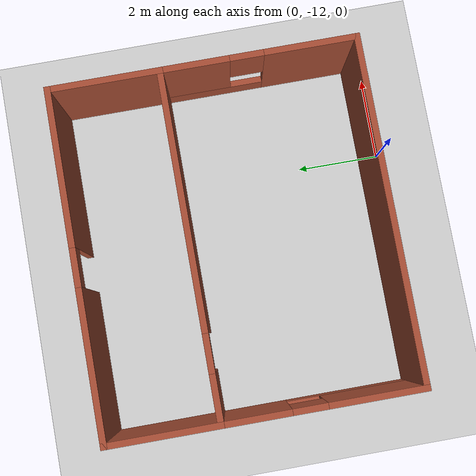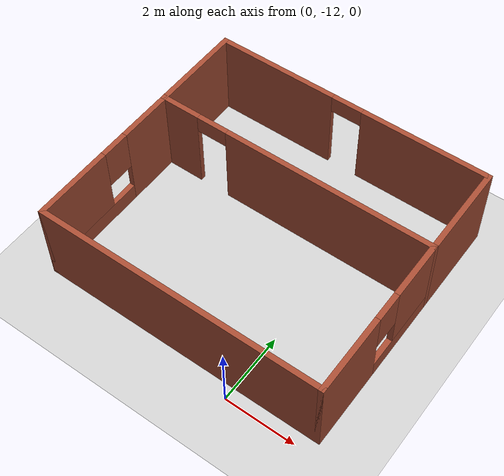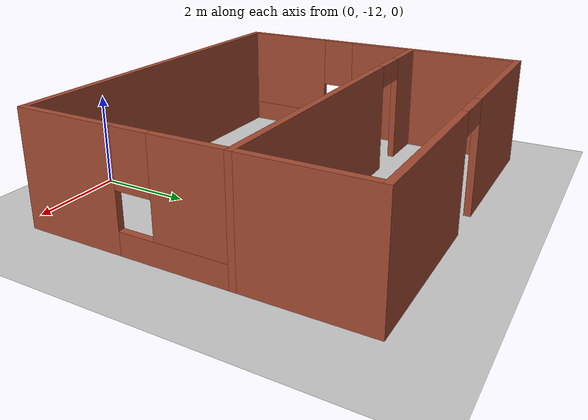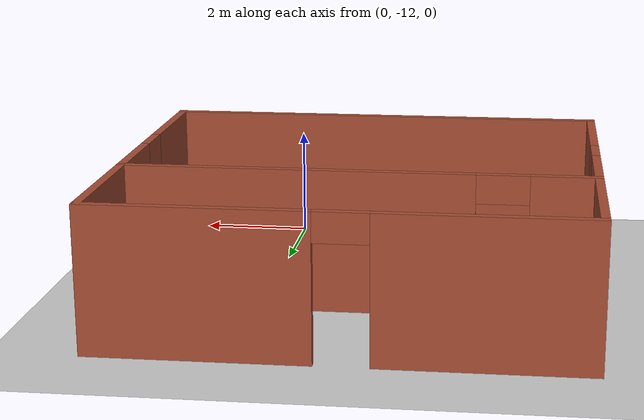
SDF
<sdf version="1.7">
 <world name="default">
  <light name="sun" type="directional">
   <pose>0 0 10 0 -0 0</pose>
   <diffuse>0.8 0.8 0.8 1</diffuse>
   <specular>0.2 0.2 0.2 1</specular>
   <attenuation>
    <range>1000</range>
    <constant>0.9</constant>
    <linear>0.01</linear>
    <quadratic>0.001</quadratic>
   </attenuation>
   <direction>-0.5 0.1 -0.9</direction>
   <spot><inner_angle>0</inner_angle><outer_angle>0</outer_angle><falloff>0</falloff></spot>
  </light>
  <model name="ground_plane">
   <static>1</static>
   <link name="link">
    <collision name="collision">
     <geometry><plane><normal>0 0 1</normal><size>100 100</size></plane></geometry>
     <surface><friction><ode><mu>100</mu><mu2>50</mu2></ode></friction></surface>
    </collision>
    <visual name="visual">
     <cast_shadows>0</cast_shadows>
     <geometry><plane><normal>0 0 1</normal><size>100 100</size></plane></geometry>
     <material>
      <script><uri>file://media/materials/scripts/gazebo.material</uri><name>Gazebo/Grey</name></script>
     </material>
    </visual>
   </link>
  </model>
  <gravity>0 0 -9.8</gravity>
  <magnetic_field>6e-06 2.3e-05 -4.2e-05</magnetic_field>
  <atmosphere type="adiabatic"/>
  <physics type="ode">
   <max_step_size>0.001</max_step_size>
   <real_time_factor>1</real_time_factor>
   <real_time_update_rate>1000</real_time_update_rate>
  </physics>
  <scene><ambient>0.4 0.4 0.4 1</ambient><background>0.7 0.7 0.7 1</background><shadows>1</shadows></scene>
  <spherical_coordinates>
   <surface_model>EARTH_WGS84</surface_model>
   <latitude_deg>0</latitude_deg>
   <longitude_deg>0</longitude_deg>
   <elevation>0</elevation>
   <heading_deg>0</heading_deg>
  </spherical_coordinates>
  <model name="my_house_v1">
   <pose>-1.66414 -5.83291 0 0 -0 0</pose>
   <link name="Wall_29">
    <pose>-4.05 -3.45791 0 0 -0 -1.5708</pose>
    <visual name="Wall_29_Visual_0">
     <pose>-1.53915 0 1.25 0 -0 0</pose>
     <geometry><box><size>1.6717 0.15 2.5</size></box></geometry>
     <material>
      <script><uri>file://media/materials/scripts/gazebo.material</uri><name>Gazebo/Bricks</name></script>
      <ambient>1 1 1 1</ambient>
     </material>
     <meta><layer>0</layer></meta>
    </visual>
    <collision name="Wall_29_Collision_0">
     <geometry><box><size>1.6717 0.15 2.5</size></box></geometry>
     <pose>-1.53915 0 1.25 0 -0 0</pose>
    </collision>
    <visual name="Wall_29_Visual_1">
     <pose>0.835849 0 0.25 0 -0 0</pose>
     <geometry><box><size>3.0783 0.15 0.5</size></box></geometry>
     <material>
      <script><uri>file://media/materials/scripts/gazebo.material</uri><name>Gazebo/Bricks</name></script>
      <ambient>1 1 1 1</ambient>
     </material>
     <meta><layer>0</layer></meta>
    </visual>
    <collision name="Wall_29_Collision_1">
     <geometry><box><size>3.0783 0.15 0.5</size></box></geometry>
     <pose>0.835849 0 0.25 0 -0 0</pose>
    </collision>
    <visual name="Wall_29_Visual_2">
     <pose>1.23585 0 1.5 0 -0 0</pose>
     <geometry><box><size>2.2783 0.15 2</size></box></geometry>
     <material>
      <script><uri>file://media/materials/scripts/gazebo.material</uri><name>Gazebo/Bricks</name></script>
      <ambient>1 1 1 1</ambient>
     </material>
     <meta><layer>0</layer></meta>
    </visual>
    <collision name="Wall_29_Collision_2">
     <geometry><box><size>2.2783 0.15 2</size></box></geometry>
     <pose>1.23585 0 1.5 0 -0 0</pose>
    </collision>
    <visual name="Wall_29_Visual_3">
     <pose>-0.303303 0 1.9 0 -0 0</pose>
     <geometry><box><size>0.8 0.15 1.2</size></box></geometry>
     <material>
      <script><uri>file://media/materials/scripts/gazebo.material</uri><name>Gazebo/Bricks</name></script>
      <ambient>1 1 1 1</ambient>
     </material>
     <meta><layer>0</layer></meta>
    </visual>
    <collision name="Wall_29_Collision_3">
     <geometry><box><size>0.8 0.15 1.2</size></box></geometry>
     <pose>-0.303303 0 1.9 0 -0 0</pose>
    </collision>
   </link>
   <link name="Wall_30">
    <collision name="Wall_30_Collision">
     <geometry><box><size>8.25 0.15 2.5</size></box></geometry>
     <pose>0 0 1.25 0 -0 0</pose>
    </collision>
    <visual name="Wall_30_Visual">
     <pose>0 0 1.25 0 -0 0</pose>
     <geometry><box><size>8.25 0.15 2.5</size></box></geometry>
     <material>
      <script><uri>file://media/materials/scripts/gazebo.material</uri><name>Gazebo/Bricks</name></script>
      <ambient>1 1 1 1</ambient>
     </material>
     <meta><layer>0</layer></meta>
    </visual>
    <pose>0 -5.75791 0 0 -0 0</pose>
   </link>
   <link name="Wall_31">
    <pose>4.05 -3.45791 0 0 -0 1.5708</pose>
    <visual name="Wall_31_Visual_0">
     <pose>-1.25043 0 1.25 0 -0 0</pose>
     <geometry><box><size>2.24914 0.15 2.5</size></box></geometry>
     <material>
      <script><uri>file://media/materials/scripts/gazebo.material</uri><name>Gazebo/Bricks</name></script>
      <ambient>1 1 1 1</ambient>
     </material>
     <meta><layer>0</layer></meta>
    </visual>
    <collision name="Wall_31_Collision_0">
     <geometry><box><size>2.24914 0.15 2.5</size></box></geometry>
     <pose>-1.25043 0 1.25 0 -0 0</pose>
    </collision>
    <visual name="Wall_31_Visual_1">
     <pose>1.12457 0 0.25 0 -0 0</pose>
     <geometry><box><size>2.50086 0.15 0.5</size></box></geometry>
     <material>
      <script><uri>file://media/materials/scripts/gazebo.material</uri><name>Gazebo/Bricks</name></script>
      <ambient>1 1 1 1</ambient>
     </material>
     <meta><layer>0</layer></meta>
    </visual>
    <collision name="Wall_31_Collision_1">
     <geometry><box><size>2.50086 0.15 0.5</size></box></geometry>
     <pose>1.12457 0 0.25 0 -0 0</pose>
    </collision>
    <visual name="Wall_31_Visual_2">
     <pose>1.52457 0 1.5 0 -0 0</pose>
     <geometry><box><size>1.70086 0.15 2</size></box></geometry>
     <material>
      <script><uri>file://media/materials/scripts/gazebo.material</uri><name>Gazebo/Bricks</name></script>
      <ambient>1 1 1 1</ambient>
     </material>
     <meta><layer>0</layer></meta>
    </visual>
    <collision name="Wall_31_Collision_2">
     <geometry><box><size>1.70086 0.15 2</size></box></geometry>
     <pose>1.52457 0 1.5 0 -0 0</pose>
    </collision>
    <visual name="Wall_31_Visual_3">
     <pose>0.27414 0 1.9 0 -0 0</pose>
     <geometry><box><size>0.8 0.15 1.2</size></box></geometry>
     <material>
      <script><uri>file://media/materials/scripts/gazebo.material</uri><name>Gazebo/Bricks</name></script>
      <ambient>1 1 1 1</ambient>
     </material>
     <meta><layer>0</layer></meta>
    </visual>
    <collision name="Wall_31_Collision_3">
     <geometry><box><size>0.8 0.15 1.2</size></box></geometry>
     <pose>0.27414 0 1.9 0 -0 0</pose>
    </collision>
   </link>
   <link name="Wall_32">
    <pose>0 -1.15792 0 0 -0 3.14159</pose>
    <visual name="Wall_32_Visual_0">
     <pose>-1.05261 0 1.25 0 -0 0</pose>
     <geometry><box><size>6.14478 0.15 2.5</size></box></geometry>
     <material>
      <script><uri>file://media/materials/scripts/gazebo.material</uri><name>Gazebo/Bricks</name></script>
      <ambient>1 1 1 1</ambient>
     </material>
     <meta><layer>0</layer></meta>
    </visual>
    <collision name="Wall_32_Collision_0">
     <geometry><box><size>6.14478 0.15 2.5</size></box></geometry>
     <pose>-1.05261 0 1.25 0 -0 0</pose>
    </collision>
    <visual name="Wall_32_Visual_1">
     <pose>3.52239 0 1.25 0 -0 0</pose>
     <geometry><box><size>1.20522 0.15 2.5</size></box></geometry>
     <material>
      <script><uri>file://media/materials/scripts/gazebo.material</uri><name>Gazebo/Bricks</name></script>
      <ambient>1 1 1 1</ambient>
     </material>
     <meta><layer>0</layer></meta>
    </visual>
    <collision name="Wall_32_Collision_1">
     <geometry><box><size>1.20522 0.15 2.5</size></box></geometry>
     <pose>3.52239 0 1.25 0 -0 0</pose>
    </collision>
    <visual name="Wall_32_Visual_2">
     <pose>2.46978 0 2.25 0 -0 0</pose>
     <geometry><box><size>0.9 0.15 0.5</size></box></geometry>
     <material>
      <script><uri>file://media/materials/scripts/gazebo.material</uri><name>Gazebo/Bricks</name></script>
      <ambient>1 1 1 1</ambient>
     </material>
     <meta><layer>0</layer></meta>
    </visual>
    <collision name="Wall_32_Collision_2">
     <geometry><box><size>0.9 0.15 0.5</size></box></geometry>
     <pose>2.46978 0 2.25 0 -0 0</pose>
    </collision>
   </link>
   <link name="Wall_34">
    <collision name="Wall_34_Collision">
     <geometry><box><size>2.75 0.15 2.5</size></box></geometry>
     <pose>0 0 1.25 0 -0 0</pose>
    </collision>
    <visual name="Wall_34_Visual">
     <pose>0 0 1.25 0 -0 0</pose>
     <geometry><box><size>2.75 0.15 2.5</size></box></geometry>
     <material>
      <script><uri>file://media/materials/scripts/gazebo.material</uri><name>Gazebo/Bricks</name></script>
      <ambient>1 1 1 1</ambient>
     </material>
     <meta><layer>0</layer></meta>
    </visual>
    <pose>-4.05 0.142086 0 0 -0 1.5708</pose>
   </link>
   <link name="Wall_35">
    <pose>0 1.44209 0 0 -0 0</pose>
    <visual name="Wall_35_Visual_0">
     <pose>-2.32673 0 1.25 0 -0 0</pose>
     <geometry><box><size>3.59654 0.15 2.5</size></box></geometry>
     <material>
      <script><uri>file://media/materials/scripts/gazebo.material</uri><name>Gazebo/Bricks</name></script>
      <ambient>1 1 1 1</ambient>
     </material>
     <meta><layer>0</layer></meta>
    </visual>
    <collision name="Wall_35_Collision_0">
     <geometry><box><size>3.59654 0.15 2.5</size></box></geometry>
     <pose>-2.32673 0 1.25 0 -0 0</pose>
    </collision>
    <visual name="Wall_35_Visual_1">
     <pose>2.24827 0 1.25 0 -0 0</pose>
     <geometry><box><size>3.75346 0.15 2.5</size></box></geometry>
     <material>
      <script><uri>file://media/materials/scripts/gazebo.material</uri><name>Gazebo/Bricks</name></script>
      <ambient>1 1 1 1</ambient>
     </material>
     <meta><layer>0</layer></meta>
    </visual>
    <collision name="Wall_35_Collision_1">
     <geometry><box><size>3.75346 0.15 2.5</size></box></geometry>
     <pose>2.24827 0 1.25 0 -0 0</pose>
    </collision>
    <visual name="Wall_35_Visual_2">
     <pose>-0.078455 0 2.25 0 -0 0</pose>
     <geometry><box><size>0.9 0.15 0.5</size></box></geometry>
     <material>
      <script><uri>file://media/materials/scripts/gazebo.material</uri><name>Gazebo/Bricks</name></script>
      <ambient>1 1 1 1</ambient>
     </material>
     <meta><layer>0</layer></meta>
    </visual>
    <collision name="Wall_35_Collision_2">
     <geometry><box><size>0.9 0.15 0.5</size></box></geometry>
     <pose>-0.078455 0 2.25 0 -0 0</pose>
    </collision>
   </link>
   <link name="Wall_36">
    <collision name="Wall_36_Collision">
     <geometry><box><size>2.75 0.15 2.5</size></box></geometry>
     <pose>0 0 1.25 0 -0 0</pose>
    </collision>
    <visual name="Wall_36_Visual">
     <pose>0 0 1.25 0 -0 0</pose>
     <geometry><box><size>2.75 0.15 2.5</size></box></geometry>
     <material>
      <script><uri>file://media/materials/scripts/gazebo.material</uri><name>Gazebo/Bricks</name></script>
      <ambient>1 1 1 1</ambient>
     </material>
     <meta><layer>0</layer></meta>
    </visual>
    <pose>4.05 0.142086 0 0 -0 -1.5708</pose>
   </link>
   <static>1</static>
  </model>
 </world>
</sdf>
